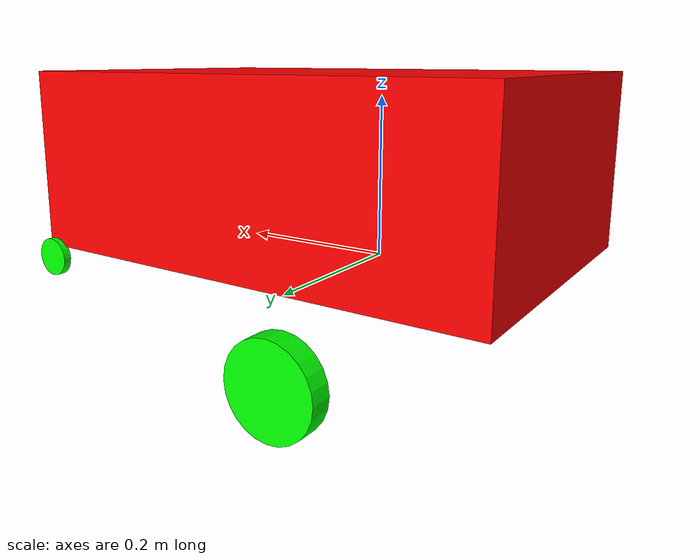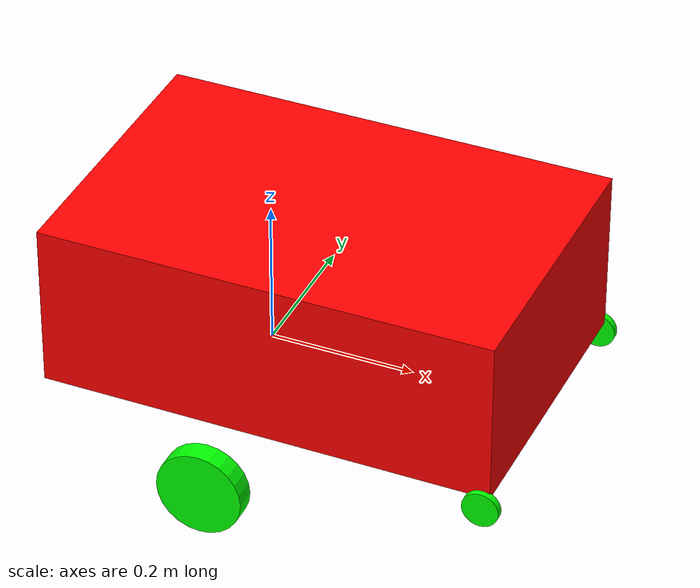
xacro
<?xml version="1.0"?>
<robot xmlns:xacro="http://www.ros.org/wiki/xacro" >
    <xacro:include filename="inertial_macros.xacro"/>

    <xacro:property name="chassis_length" value="0.6221"/>
    <xacro:property name="chassis_width" value="0.408"/>
    <xacro:property name="chassis_height" value="0.2291"/>
    <xacro:property name="chassis_mass" value="1.0"/>

    <xacro:property name="wheel_radius" value="0.06"/>
    <!-- here 0.03 to not be in the chassis, normally it should be 0.06 -->
    <xacro:property name="wheel_thickness" value="0.03"/>
    <xacro:property name="wheel_mass" value="0.05"/>

    <xacro:property name="wheel_offset_x" value="0.0795"/>
    <xacro:property name="wheel_offset_y" value="0.202"/>
    <xacro:property name="wheel_offset_z" value="0.09855"/>

    <xacro:property name="small_wheel_offset_x" value="0.30105"/>
    <xacro:property name="small_wheel_offset_z" value="0.12955"/>

    <xacro:property name="small_wheel_radius" value="0.025"/>
    <xacro:property name="small_wheel_thickness" value="0.01"/>
    <xacro:property name="small_wheel_mass" value="0.04"/>

    <material name="white">
        <color rgba="1 1 1 1" />
    </material>

    <material name="orange">
        <color rgba="1 0.3 0.1 1"/>
    </material>

    <material name="blue">
        <color rgba="0.2 0.2 1 1"/>
    </material>

    <material name="black">
        <color rgba="0 0 0 1"/>
    </material>

    <material name="red">
        <color rgba="1 0 0 1"/>
    </material>

    <material name="green">
        <color rgba="0 1 0 1"/>
    </material>

    <!-- BASE LINK -->

    <link name="base_link" />

    <!-- BASE_FOOTPRINT LINK -->

    <joint name="base_footprint_joint" type="fixed">
        <parent link="base_link"/>
        <child link="base_footprint"/>
        <origin xyz="0 0 0" rpy="0 0 0"/>
    </joint>

    <link name="base_footprint" />

    <joint name="imu_joint" type="fixed">
        <parent link="base_link"/>
        <child link="imu"/>
        <origin xyz="0 0 0" rpy="0 3.14 -1.57"/>
    </joint>

    <link name="imu" />

    <!-- Burshes -->
    <joint name="brushes_joint" type="fixed">
        <parent link="base_link"/>
        <child link="brushes"/>
        <origin xyz="${0.05 + wheel_offset_x}  0 0" rpy="0 0 0"/>
    </joint>

    <link name="brushes" />
    <!-- CHASSIS LINK -->

    <joint name="chassis_joint" type="fixed">
        <parent link="base_link"/>
        <child link="chassis"/>
        <origin xyz="${wheel_offset_x} 0 ${chassis_height/2}"/>
    </joint>

    <link name="chassis">
        <visual>
            <origin xyz="0 0 0"/>
            <geometry>
                <box size="${chassis_length} ${chassis_width} ${chassis_height}"/>
            </geometry>
            <material name="red"/>
        </visual>
        <collision>
            <origin xyz="0 0 0"/>
            <geometry>
                <box size="${chassis_length} ${chassis_width} ${chassis_height}"/>
            </geometry>
        </collision>
        <xacro:inertial_box mass="${chassis_mass}" x="${chassis_length}" y="${chassis_width}" z="${chassis_height}">
            <origin xyz="0 0 0" rpy="0 0 0"/>
        </xacro:inertial_box>
    </link>

    <gazebo reference="chassis">
        <material>Gazebo/Red</material>
    </gazebo>

    <!-- LEFT WHEEL LINK -->

    <joint name="left_wheel_joint" type="continuous">
        <parent link="base_link"/>
        <child link="left_wheel"/>
        <origin xyz="0 ${wheel_offset_y + wheel_thickness/2} ${-wheel_offset_z}" rpy="-${pi/2} 0 0" />
        <axis xyz="0 0 1"/>
    </joint>

    <link name="left_wheel">
        <visual>
            <geometry>
                <cylinder radius="${wheel_radius}" length="${wheel_thickness}"/>
            </geometry>
            <material name="green"/>
        </visual>
        <collision>
            <geometry>
                <cylinder radius="${wheel_radius}" length="${wheel_thickness}"/>
            </geometry>
        </collision>
        <xacro:inertial_cylinder mass="${wheel_mass}" length="${wheel_thickness}" radius="${wheel_radius}">
            <origin xyz="0 0 0" rpy="0 0 0"/>
        </xacro:inertial_cylinder>
    </link>

    <gazebo reference="left_wheel">
        <material>Gazebo/Green</material>
    </gazebo>

    <!-- RIGHT WHEEL LINK -->

    <joint name="right_wheel_joint" type="continuous">
        <parent link="base_link"/>
        <child link="right_wheel"/>
        <origin xyz="0 ${-wheel_offset_y - wheel_thickness/2} ${-wheel_offset_z}" rpy="${pi/2} 0 0" />
        <axis xyz="0 0 -1"/>
    </joint>

    <link name="right_wheel">
        <visual>
            <geometry>
                <cylinder radius="${wheel_radius}" length="${wheel_thickness}"/>
            </geometry>
            <material name="green"/>
        </visual>
        <collision>
            <geometry>
                <cylinder radius="${wheel_radius}" length="${wheel_thickness}"/>
            </geometry>
        </collision>
        <xacro:inertial_cylinder mass="${wheel_mass}" length="${wheel_thickness}" radius="${wheel_radius}">
            <origin xyz="0 0 0" rpy="0 0 0"/>
        </xacro:inertial_cylinder>
    </link>

    <gazebo reference="right_wheel">
        <material>Gazebo/Green</material>
    </gazebo>

    <!-- LEFT FRONT WHEEL -->

    <joint name="left_front_wheel_joint" type="fixed">
        <parent link="chassis"/>
        <child link="left_front_wheel"/>
        <origin xyz="${small_wheel_offset_x} ${wheel_offset_y + small_wheel_thickness/2} ${-small_wheel_offset_z}" rpy="${-pi/2} 0 0" />
    </joint>

    <link name="left_front_wheel">
        <visual>
            <geometry>
                <cylinder radius="${small_wheel_radius}" length="${small_wheel_thickness}"/>
            </geometry>
            <material name="green"/>
        </visual>
        <collision>
            <geometry>
                <cylinder radius="${small_wheel_radius}" length="${small_wheel_thickness}"/>
            </geometry>
        </collision>
        <xacro:inertial_cylinder mass="${small_wheel_mass}" length="${small_wheel_thickness}" radius="${small_wheel_radius}">
            <origin xyz="0 0 0" rpy="0 0 0"/>
        </xacro:inertial_cylinder>
    </link>

    <gazebo reference="left_front_wheel">
        <material>Gazebo/Green</material>
        <mu1 value="0.001"/>
        <mu2 value="0.001"/>
    </gazebo>

    <!-- RIGHT FRONT WHEEL -->

    <joint name="right_front_wheel_joint" type="fixed">
        <parent link="chassis"/>
        <child link="right_front_wheel"/>
        <origin xyz="${small_wheel_offset_x} ${-wheel_offset_y - small_wheel_thickness/2} ${-small_wheel_offset_z}" rpy="${pi/2} 0 0" />
    </joint>

    <link name="right_front_wheel">
        <visual>
            <geometry>
                <cylinder radius="${small_wheel_radius}" length="${small_wheel_thickness}"/>
            </geometry>
            <material name="green"/>
        </visual>
        <collision>
            <geometry>
                <cylinder radius="${small_wheel_radius}" length="${small_wheel_thickness}"/>
            </geometry>
        </collision>
        <xacro:inertial_cylinder mass="${small_wheel_mass}" length="${small_wheel_thickness}" radius="${small_wheel_radius}">
            <origin xyz="0 0 0" rpy="0 0 0"/>
        </xacro:inertial_cylinder>
    </link>

     <gazebo reference="right_front_wheel">
        <material>Gazebo/Green</material>
        <mu1 value="0.001"/>
        <mu2 value="0.001"/>
    </gazebo>

</robot>

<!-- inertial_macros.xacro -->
<robot xmlns:xacro="http://www.ros.org/wiki/xacro" >
    <xacro:macro name="inertial_sphere" params="mass radius *origin">
        <inertial>
            <xacro:insert_block name="origin"/>
            <mass value="${mass}" />
            <inertia ixx="${(2/5) * mass * (radius*radius)}" ixy="0.0" ixz="0.0"
                    iyy="${(2/5) * mass * (radius*radius)}" iyz="0.0"
                    izz="${(2/5) * mass * (radius*radius)}" />
        </inertial>
    </xacro:macro>

    <xacro:macro name="inertial_box" params="mass x y z *origin">
        <inertial>
            <xacro:insert_block name="origin"/>
            <mass value="${mass}" />
            <inertia ixx="${(1/12) * mass * (y*y+z*z)}" ixy="0.0" ixz="0.0"
                    iyy="${(1/12) * mass * (x*x+z*z)}" iyz="0.0"
                    izz="${(1/12) * mass * (x*x+y*y)}" />
        </inertial>
    </xacro:macro>

    <xacro:macro name="inertial_cylinder" params="mass length radius *origin">
        <inertial>
            <xacro:insert_block name="origin"/>
            <mass value="${mass}" />
            <inertia ixx="${(1/12) * mass * (3*radius*radius + length*length)}" ixy="0.0" ixz="0.0"
                    iyy="${(1/12) * mass * (3*radius*radius + length*length)}" iyz="0.0"
                    izz="${(1/2) * mass * (radius*radius)}" />
        </inertial>
    </xacro:macro>
</robot>
